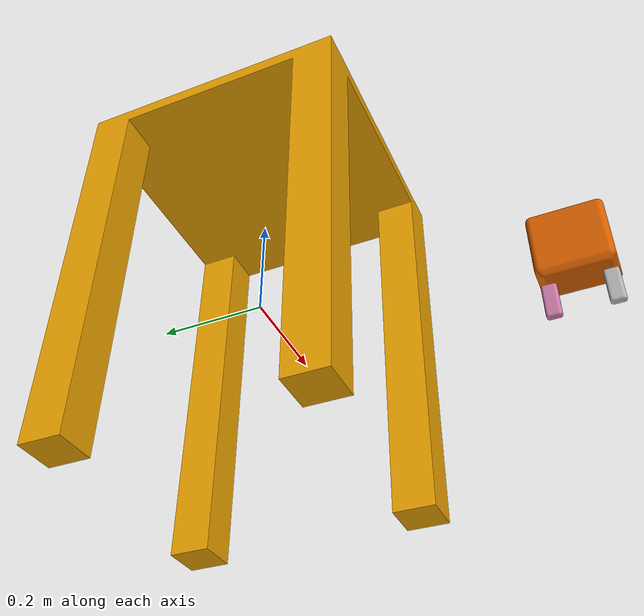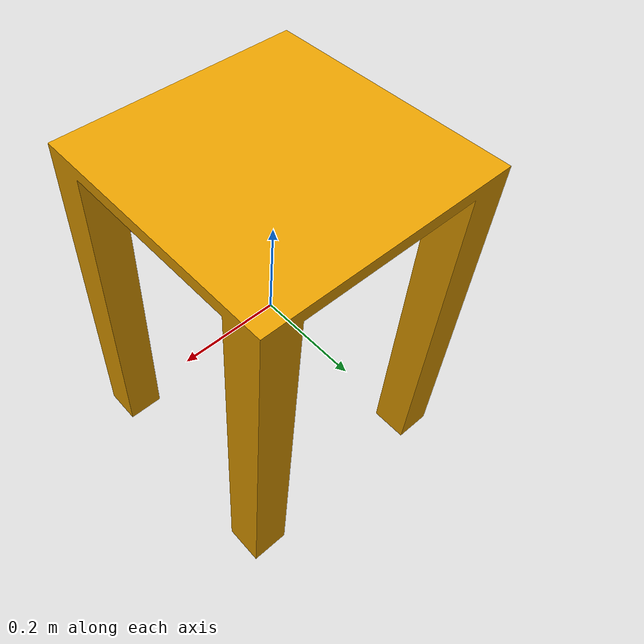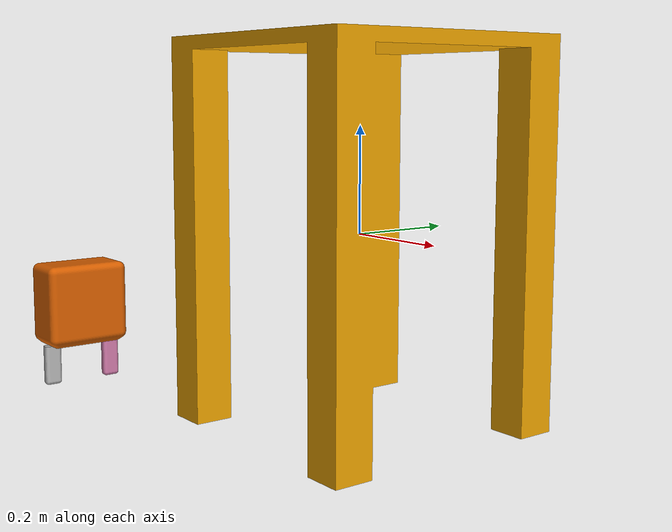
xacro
<?xml version="1.0"?>
<robot xmlns:xacro="http://www.ros.org/wiki/xacro" name="cartesian_envrionment">
<!-- some urdf stuff commented out now that we're an xacro -->
<!--robot name="cartesian_envrionment"-->
    <link name="base_link">
        <visual>
            <geometry>
                <mesh filename="./meshes/table.stl"/>
            </geometry>
        </visual>
        <collision>
            <geometry>
                <mesh filename="./meshes/table.stl"/>
            </geometry>
        </collision>
    </link>

    <joint name="start_pose_offset_fixed_joint" type="fixed">
        <parent link="base_link" />
        <child link="start_pose_offset_link" />
        <origin xyz="0 0 0" />
    </joint>

    <link name="start_pose_offset_link">
        <origin xyz="0 0 0" rpy="0 0 0" />
    </link>

    <joint name="table_to_gripper_x" type="prismatic">
        <parent link="base_link" />
        <child link="x_to_y" />
        <origin xyz="0 0 0" rpy="0 0 0" />
        <limit effort="1000" lower="-0.5" upper="0.5" velocity="0.1" />
    </joint>

    <link name="x_to_y">
        <origin xyz="0 0 0" rpy="0 0 0"/>
    </link>

    <joint name="table_to_gripper_y" type="prismatic">
        <parent link="x_to_y" />
        <child link="y_to_z" />
        <origin xyz="0 0 0" rpy="0 0 ${pi/2}" />
        <limit effort="1000" lower="-0.5" upper="0.5" velocity="0.1" />
    </joint>

    <link name="y_to_z">
        <origin xyz="0 0 0" rpy="0 0 0"/>
    </link>

    <joint name="table_to_gripper_z" type="prismatic">
        <parent link="y_to_z" />
        <child link="prismatic_output" />
        <origin xyz="0 0 0" rpy="0 -${pi/2} 0 " />
        <limit effort="1000" lower="-0.5" upper="0.5" velocity="0.1" />
    </joint>

    <link name="prismatic_output">
        <origin xyz="0 0 0" rpy="0 0 0"/>
    </link>

    <joint name="prismatic_to_gripper" type="fixed">
        <parent link="prismatic_output" />
        <child link="gripper_base" />
        <origin xyz="0 0 0.560" rpy="0 ${pi/2} 0" />
    </joint>

    <link name="gripper_base">
        <visual>
            <geometry>
                <mesh filename="./meshes/gripper_base.stl"/>
            </geometry>
        </visual>
        <collision>
            <geometry>
                <mesh filename="./meshes/gripper_base.stl"/>
            </geometry>
        </collision>
    </link>

    <joint name="gripper_to_finger_left" type="fixed">
        <parent link="gripper_base" />
        <child link="finger_left" />
        <origin xyz="0.048 0 -0.125" rpy="0 0 0" />
    </joint>

    <joint name="gripper_to_finger_right" type="fixed">
        <parent link="gripper_base" />
        <child link="finger_right" />
        <origin xyz="-0.048 0 -0.125" rpy="0 0 0" />
    </joint>

    <link name="finger_left">
        <visual>
            <geometry>
                <mesh filename="./meshes/gripper_finger.stl"/>
            </geometry>
        </visual>
        <collision>
            <geometry>
                <mesh filename="./meshes/gripper_finger.stl"/>
            </geometry>
        </collision>
    </link>

    <link name="finger_right">
        <visual>
            <geometry>
                <mesh filename="./meshes/gripper_finger.stl"/>
            </geometry>
        </visual>
        <collision>
            <geometry>
                <mesh filename="./meshes/gripper_finger.stl"/>
            </geometry>
        </collision>
    </link>
</robot>
